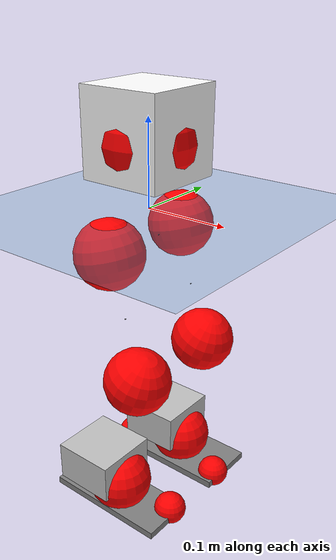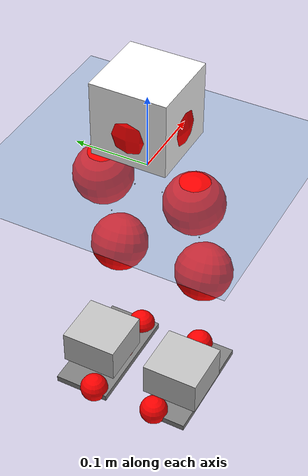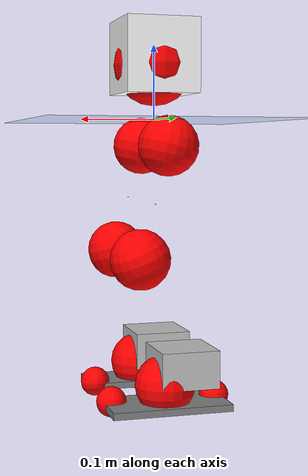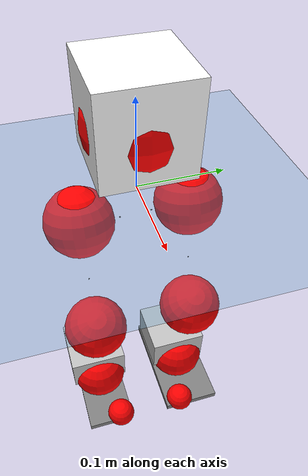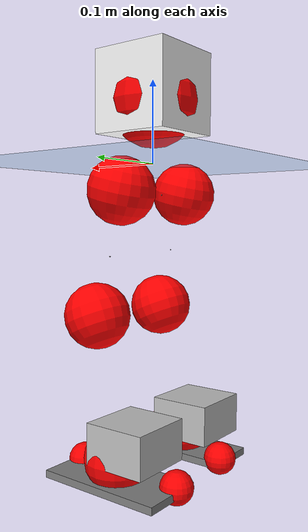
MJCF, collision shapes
<mujoco model="pi_12dof_release_v1">
  <compiler angle="radian" assetdir="assets" balanceinertia="true" inertiafromgeom="false"/>

  <option timestep="0.005" density="1.2" viscosity="2e-05"/>

  <size nkey="1"/>

  <visual>
    <quality shadowsize="8192"/>
    <map shadowclip="0.5"/>
  </visual>

  <default>
    <default class="/">
      <joint armature="0.01" damping="0.01" frictionloss="0.01"/>
      <geom contype="0" conaffinity="0" group="1" solref="-1000 -80"/>
      <site size="0.01 0.005 0.005" group="5"/>
      <general forcelimited="true" biastype="affine" gainprm="20" biasprm="0 -20 -0.5"/>
      <default class="foot">
        <geom size="0.0845 0.036 0.005" type="box" condim="6" group="4" priority="1" friction="0.9 0.2 0.2" solimp="0.015 1 0.005"/>
      </default>
      <default class="reward_collision_sphere">
        <geom group="5" rgba="1 0 0 1"/>
      </default>
    </default>
  </default>

  <asset>
    <texture type="skybox" colorspace="auto" name="//unnamed_texture_0" builtin="gradient" rgb1="0.95 0.95 0.95" rgb2="0.95 0.95 0.95" width="100" height="600"/>
    <texture type="2d" colorspace="auto" name="texplane" builtin="checker" rgb1="0.345 0.575 0.748" rgb2="0.345 0.575 0.748" markrgb="1 1 1" width="512" height="512"/>
    <material name="MatPlane" class="/" texture="texplane" texuniform="true" texrepeat="2 2" specular="0.9"/>
    <mesh name="baselink_1" class="/" file="baselink_1.STL"/>
    <mesh name="r_hip_pitch_link" class="/" file="r_hip_pitch_link.STL"/>
    <mesh name="r_hip_roll_link" class="/" file="r_hip_roll_link.STL"/>
    <mesh name="r_thigh_link" class="/" file="r_thigh_link.STL"/>
    <mesh name="r_calf_link" class="/" file="r_calf_link.STL"/>
    <mesh name="r_ankle_pitch_link" class="/" file="r_ankle_pitch_link.STL"/>
    <mesh name="r_ankle_roll_link" class="/" file="r_ankle_roll_link.STL"/>
    <mesh name="l_hip_pitch_link" class="/" file="l_hip_pitch_link.STL"/>
    <mesh name="l_hip_roll_link" class="/" file="l_hip_roll_link.STL"/>
    <mesh name="l_thigh_link" class="/" file="l_thigh_link.STL"/>
    <mesh name="l_calf_link" class="/" file="l_calf_link.STL"/>
    <mesh name="l_ankle_pitch_link" class="/" file="l_ankle_pitch_link.STL"/>
    <mesh name="l_ankle_roll_link" class="/" file="l_ankle_roll_link.STL"/>
  </asset>

  <worldbody>
    <geom name="floor" class="/" size="100 100 0.125" type="plane" group="0" material="MatPlane"/>
    <light name="toplight_shadow" class="/" pos="0 0 5" dir="0.0990148 0.0990148 -0.990148" type="directional" ambient="0.04 0.04 0.04" diffuse="0.55 0.55 0.55" specular="0.12 0.12 0.12"/>
    <light name="toplight_fill" class="/" pos="0 0 5" dir="0.0990148 0.0990148 -0.990148" type="directional" castshadow="false" ambient="0.04 0.04 0.04" diffuse="0.3 0.3 0.3" specular="0.08 0.08 0.08"/>
    <body name="trunk" pos="-0.000349518 -0.000334465 -0.00267558" quat="0.999999 0.000647678 -0.000157305 -0.00113929">
      <inertial pos="0.000879844 0.00122493 0.0442799" quat="0.692861 0.00508113 -0.0022061 0.72105" mass="2.10957" diaginertia="0.0127242 0.00384297 0.00650666"/>
      <joint name="//unnamed_joint_0" type="free"/>
      <geom name="//unnamed_geom_1" class="/" type="mesh" density="0" rgba="1 1 1 1" mesh="baselink_1"/>
      <geom name="//unnamed_geom_2" class="/" size="0.0494562 0.0494562 0.0494562" pos="0 0 0.0867944" type="box" rgba="1 1 1 1"/>
      <geom name="//unnamed_geom_3" class="reward_collision_sphere" size="0.0544019" pos="0 0 0.0759451"/>
      <site name="imu" class="/" pos="-0.00467207 0.00459612 -0.01052" size="0.00989125"/>
      <camera name="track" class="/" pos="0 -1.67158 0" quat="0.707107 0.707107 0 0" mode="trackcom"/>
      <camera name="ego_camera" class="/" pos="0.078499 0 0.195287" quat="-0.5 -0.5 0.5 0.5"/>
      <body name="r_hip_pitch_link" pos="0.00183901 -0.0191916 -0.0339187" quat="0.9922 4.44565e-06 -0.124654 -1.96682e-05">
        <inertial pos="-0.00141125 -0.047608 -0.00252095" quat="-0.0275848 0.699829 -0.0344416 0.712947" mass="0.353529" diaginertia="0.000138089 4.00701e-05 0.000123571"/>
        <joint name="r_hip_pitch_joint" class="/" pos="0 0 0" axis="0.000252219 -0.999987 -0.00518376" stiffness="0.00258417" range="-1.77269 1.27116" armature="0.00988522" damping="0.0161266" frictionloss="0.00952782"/>
        <geom name="//unnamed_geom_4" class="/" type="mesh" density="0" rgba="0.75294 0.75294 0.75294 1" mesh="r_hip_pitch_link"/>
        <geom name="//unnamed_geom_5" class="/" size="0.000494562 0.000494562 0.000494562" type="box" rgba="0.75294 0.75294 0.75294 1"/>
        <body name="r_hip_roll_link" pos="-0.00155505 -0.0454945 0.00254348" quat="1 -0.000241235 -2.98173e-05 -0.00017579">
          <inertial pos="-0.00121656 0.00020023 -0.0646675" quat="0.708778 -0.077121 -0.0828234 0.696295" mass="0.359526" diaginertia="0.000401747 0.000109843 0.000181882"/>
          <joint name="r_hip_roll_joint" class="/" pos="0 0 0" axis="-0.999963 0.00819504 0.00265183" stiffness="0.000954158" range="-0.118016 0.503671" armature="0.00859718" damping="0.00813871" frictionloss="0.0104263"/>
          <geom name="//unnamed_geom_6" class="/" type="mesh" density="0" rgba="0.75294 0.75294 0.75294 1" mesh="r_hip_roll_link"/>
          <geom name="//unnamed_geom_7" class="/" size="0.000494562 0.000494562 0.000494562" type="box" rgba="0.75294 0.75294 0.75294 1"/>
          <geom name="//unnamed_geom_8" class="reward_collision_sphere" size="0.039565"/>
          <body name="r_thigh_link" pos="0.00152331 0.000699413 -0.0747364" quat="1 0.000251676 0.000122281 0.000385737">
            <inertial pos="-0.00225955 -0.00188306 -0.0521021" quat="0.736893 0.676003 0.00122241 0.00240641" mass="0.108056" diaginertia="0.00015081 3.83567e-05 8.68242e-05"/>
            <joint name="r_thigh_joint" class="/" pos="0 0 0" axis="7.91884e-05 0.00295381 -0.999996" range="-0.308542 0.639582" armature="0.00869711" damping="0.0131786" frictionloss="0.0102817"/>
            <geom name="//unnamed_geom_9" class="/" type="mesh" density="0" rgba="0.75294 0.75294 0.75294 1" mesh="r_thigh_link"/>
            <geom name="//unnamed_geom_10" class="/" size="0.000494562 0.000494562 0.000494562" type="box" rgba="0.75294 0.75294 0.75294 1"/>
            <body name="r_calf_link" pos="-0.00169106 -0.00102932 -0.0761512" quat="0.947553 -0.00116149 0.319596 -0.000618645">
              <inertial pos="-0.000248716 -0.000787248 -0.0763464" quat="0.999844 -0.00355643 -0.00797979 0.0153183" mass="0.823021" diaginertia="0.00442607 0.00143787 0.000263667"/>
              <joint name="r_calf_joint" class="/" pos="0 0 0" axis="-0.00182046 -0.999987 -0.00476558" stiffness="0.0024924" range="-1.64561 0.659443" armature="0.00994918" damping="0.0105808" frictionloss="0.00996972"/>
              <geom name="//unnamed_geom_11" class="/" type="mesh" density="0" rgba="0.75294 0.75294 0.75294 1" mesh="r_calf_link"/>
              <geom name="//unnamed_geom_12" class="/" size="0.000494562 0.000494562 0.000494562" type="box" rgba="0.75294 0.75294 0.75294 1"/>
              <geom name="//unnamed_geom_13" class="reward_collision_sphere" size="0.039565"/>
              <body name="r_ankle_pitch_link" pos="0.00130337 0.000582741 -0.151909" quat="0.980044 -2.92214e-05 -0.198778 -6.69598e-05">
                <inertial pos="0.00485085 0.00277301 0.000573813" quat="0.00161977 0.707102 0.00281469 0.707104" mass="0.174106" diaginertia="0.000388013 8.76788e-05 0.000179324"/>
                <joint name="r_ankle_pitch_joint" class="/" pos="0 0 0" axis="-0.00212344 -0.99999 0.00402057" range="-1.31114 0.500624" armature="0.0101298" damping="0.0233121" frictionloss="0.00954702"/>
                <geom name="//unnamed_geom_14" class="/" type="mesh" density="0" rgba="0.75294 0.75294 0.75294 1" mesh="r_ankle_pitch_link"/>
                <geom name="//unnamed_geom_15" class="/" size="0.0385759 0.039565 0.0247281" type="box" rgba="0.75294 0.75294 0.75294 1"/>
                <body name="r_ankle_roll_link" pos="0.0778001 0.00116486 0.000948619" quat="1 0.00022445 -0.000384132 -0.000388483">
                  <inertial pos="-0.0236413 -0.00245945 -0.0137395" quat="0.552429 0.441452 0.434639 0.557703" mass="0.489815" diaginertia="0.00136704 0.000419568 0.000405403"/>
                  <joint name="r_ankle_roll_joint" class="/" pos="0 0 0" axis="-0.999994 -0.00152196 0.00324346" range="-0.202719 0.171261" armature="0.00865128" damping="0.0041635" frictionloss="0.00858081"/>
                  <geom name="//unnamed_geom_16" class="/" type="mesh" density="0" rgba="0.75294 0.75294 0.75294 1" mesh="r_ankle_roll_link"/>
                  <geom name="//unnamed_geom_17" class="/" type="mesh" rgba="0.75294 0.75294 0.75294 1" mesh="r_ankle_roll_link"/>
                  <geom name="right_foot" class="foot" size="0.0791778 0.0327346 0.00436707" pos="-0.0533793 0 -0.0477369"/>
                  <geom name="//unnamed_geom_19" class="reward_collision_sphere" size="0.039565" pos="-0.0523327 0 -0.0216986"/>
                  <geom name="//unnamed_geom_20" class="reward_collision_sphere" size="0.0197825" pos="0.0156998 0.0167158 -0.0433972"/>
                  <geom name="//unnamed_geom_21" class="reward_collision_sphere" size="0.0197825" pos="-0.125598 0.0167158 -0.0433972"/>
                  <site name="right_foot" class="foot" pos="-0.0533793 0 -0.0477369" size="0.00989125"/>
                </body>
              </body>
            </body>
          </body>
        </body>
      </body>
      <body name="l_hip_pitch_link" pos="0.000311176 0.0179877 -0.0338662" quat="0.992175 0.000271399 -0.124851 -0.000215414">
        <inertial pos="0.00126102 0.0423055 -0.00260324" quat="-0.0388654 0.704115 0.0302225 0.708377" mass="0.373481" diaginertia="0.000158996 4.21872e-05 0.000145875"/>
        <joint name="l_hip_pitch_joint" class="/" pos="0 0 0" axis="-0.00528073 0.999911 0.0122911" range="-1.30032 1.74443" armature="0.00994536" damping="0" frictionloss="0.0101562"/>
        <geom name="//unnamed_geom_22" class="/" type="mesh" density="0" rgba="0.75294 0.75294 0.75294 1" mesh="l_hip_pitch_link"/>
        <geom name="//unnamed_geom_23" class="/" size="0.000494562 0.000494562 0.000494562" type="box" rgba="0.75294 0.75294 0.75294 1"/>
        <body name="l_hip_roll_link" pos="-0.00113407 0.0441974 0.00220996" quat="1 -9.88809e-05 -1.13335e-05 0.000902396">
          <inertial pos="0.00101579 -0.00200362 -0.0689384" quat="0.699231 -0.0752832 -0.0780026 0.706629" mass="0.38544" diaginertia="0.000446293 0.000116046 0.000203379"/>
          <joint name="l_hip_roll_joint" class="/" pos="0 0 0" axis="-0.99999 9.93958e-06 -0.00440641" range="-0.502723 0.0972415" armature="0.00905712" damping="0.0117041" frictionloss="0.00988519"/>
          <geom name="//unnamed_geom_24" class="/" type="mesh" density="0" rgba="0.75294 0.75294 0.75294 1" mesh="l_hip_roll_link"/>
          <geom name="//unnamed_geom_25" class="/" size="0.000494562 0.000494562 0.000494562" type="box" rgba="0.75294 0.75294 0.75294 1"/>
          <geom name="//unnamed_geom_26" class="reward_collision_sphere" size="0.039565"/>
          <body name="l_thigh_link" pos="-0.00170232 -2.36593e-05 -0.0772048" quat="0.999999 -0.00100992 -0.000193095 0.000131475">
            <inertial pos="-0.002167 -0.00041527 -0.054383" quat="0.668699 0.743475 0.00235396 0.00899737" mass="0.107418" diaginertia="0.00015384 3.75632e-05 8.49557e-05"/>
            <joint name="l_thigh_joint" class="/" pos="0 0 0" axis="-0.00126031 0.00163332 -0.999998" range="-0.613109 0.31393" armature="0.0102837" damping="0.00775727" frictionloss="0.0112082"/>
            <geom name="//unnamed_geom_27" class="/" type="mesh" density="0" rgba="0.75294 0.75294 0.75294 1" mesh="l_thigh_link"/>
            <geom name="//unnamed_geom_28" class="/" size="0.000494562 0.000494562 0.000494562" type="box" rgba="0.75294 0.75294 0.75294 1"/>
            <body name="l_calf_link" pos="0.00180998 4.42846e-05 -0.0741626" quat="0.947742 -6.3581e-06 0.319037 0.000171141">
              <inertial pos="-0.00173824 0.00132466 -0.0771795" quat="0.99987 0.00399104 -0.0120679 0.00993497" mass="0.787553" diaginertia="0.00472277 0.00148132 0.00027302"/>
              <joint name="l_calf_joint" class="/" pos="0 0 0" axis="0.0051393 0.999986 0.00136635" range="-0.699461 1.70516" armature="0.00941945" damping="0" frictionloss="0.010554"/>
              <geom name="//unnamed_geom_29" class="/" type="mesh" density="0" rgba="0.75294 0.75294 0.75294 1" mesh="l_calf_link"/>
              <geom name="//unnamed_geom_30" class="/" size="0.000494562 0.000494562 0.000494562" type="box" rgba="0.75294 0.75294 0.75294 1"/>
              <geom name="//unnamed_geom_31" class="reward_collision_sphere" size="0.039565"/>
              <body name="l_ankle_pitch_link" pos="0.00238101 6.77543e-05 -0.151939" quat="0.980025 0.000277155 -0.198874 1.4404e-05">
                <inertial pos="0.00529767 -0.00178463 -0.00271619" quat="0.0039378 0.706949 0.00590689 0.707229" mass="0.166489" diaginertia="0.000402786 9.1628e-05 0.000179724"/>
                <joint name="l_ankle_pitch_joint" class="/" pos="0 0 0" axis="-0.000892359 0.999999 0.000675201" stiffness="0.00746821" range="-0.536409 1.31043" armature="0.00994929" damping="0" frictionloss="0.00882734"/>
                <geom name="//unnamed_geom_32" class="/" type="mesh" density="0" rgba="0.75294 0.75294 0.75294 1" mesh="l_ankle_pitch_link"/>
                <geom name="//unnamed_geom_33" class="/" size="0.0385759 0.039565 0.0247281" type="box" rgba="0.75294 0.75294 0.75294 1"/>
                <body name="l_ankle_roll_link" pos="0.0764583 0.0025925 -0.00258741" quat="0.999999 -0.0002957 -0.000398756 -0.00120778">
                  <inertial pos="-0.0259432 -0.000602976 -0.0161847" quat="0.551972 0.44021 0.437582 0.556834" mass="0.514751" diaginertia="0.00145385 0.000429097 0.000417269"/>
                  <joint name="l_ankle_roll_joint" class="/" pos="0 0 0" axis="-1 -3.45015e-06 7.546e-05" stiffness="0.00390297" range="-0.162556 0.100375" armature="0.00993925" damping="0" frictionloss="0.00976094"/>
                  <geom name="//unnamed_geom_34" class="/" type="mesh" density="0" rgba="0.75294 0.75294 0.75294 1" mesh="l_ankle_roll_link"/>
                  <geom name="//unnamed_geom_35" class="/" type="mesh" rgba="0.75294 0.75294 0.75294 1" mesh="l_ankle_roll_link"/>
                  <geom name="left_foot" class="foot" size="0.0796652 0.0397529 0.00452576" pos="-0.0533793 0 -0.0477369"/>
                  <geom name="//unnamed_geom_37" class="reward_collision_sphere" size="0.039565" pos="-0.0523327 0 -0.0216986"/>
                  <geom name="//unnamed_geom_38" class="reward_collision_sphere" size="0.0197825" pos="0.0156998 -0.0167158 -0.0433972"/>
                  <geom name="//unnamed_geom_39" class="reward_collision_sphere" size="0.0197825" pos="-0.125598 -0.0167158 -0.0433972"/>
                  <site name="left_foot" class="foot" pos="-0.0533793 0 -0.0477369" size="0.00989125"/>
                </body>
              </body>
            </body>
          </body>
        </body>
      </body>
    </body>
  </worldbody>

  <contact>
    <pair class="/" geom1="floor" geom2="right_foot" name="//unnamed_contact_1"/>
    <pair class="/" geom1="floor" geom2="left_foot" name="//unnamed_contact_0"/>
  </contact>

  <actuator>
    <general name="r_hip_pitch_joint" class="/" joint="r_hip_pitch_joint" forcerange="-22.7292 22.7292" gainprm="18.5605" biasprm="0 -18.5605 -0.465337"/>
    <general name="r_hip_roll_joint" class="/" joint="r_hip_roll_joint" forcerange="-18.7286 18.7286" gainprm="18.5605" biasprm="0 -18.5605 -0.465337"/>
    <general name="r_thigh_joint" class="/" joint="r_thigh_joint" forcerange="-21.0649 21.0649" gainprm="18.5605" biasprm="0 -18.5605 -0.465337"/>
    <general name="r_calf_joint" class="/" joint="r_calf_joint" forcerange="-22.7761 22.7761" gainprm="18.5605" biasprm="0 -18.5605 -0.465337"/>
    <general name="r_ankle_pitch_joint" class="/" joint="r_ankle_pitch_joint" forcerange="-20.8195 20.8195" gainprm="18.5605" biasprm="0 -18.5605 -0.465337"/>
    <general name="r_ankle_roll_joint" class="/" joint="r_ankle_roll_joint" forcerange="-18.685 18.685" gainprm="18.5605" biasprm="0 -18.5605 -0.465337"/>
    <general name="l_hip_pitch_joint" class="/" joint="l_hip_pitch_joint" forcerange="-20.8891 20.8891" gainprm="18.5605" biasprm="0 -18.5605 -0.465337"/>
    <general name="l_hip_roll_joint" class="/" joint="l_hip_roll_joint" forcerange="-20.1094 20.1094" gainprm="18.5605" biasprm="0 -18.5605 -0.465337"/>
    <general name="l_thigh_joint" class="/" joint="l_thigh_joint" forcerange="-21.3902 21.3902" gainprm="18.5605" biasprm="0 -18.5605 -0.465337"/>
    <general name="l_calf_joint" class="/" joint="l_calf_joint" forcerange="-21.3161 21.3161" gainprm="18.5605" biasprm="0 -18.5605 -0.465337"/>
    <general name="l_ankle_pitch_joint" class="/" joint="l_ankle_pitch_joint" forcerange="-21.2224 21.2224" gainprm="18.5605" biasprm="0 -18.5605 -0.465337"/>
    <general name="l_ankle_roll_joint" class="/" joint="l_ankle_roll_joint" forcerange="-20.8646 20.8646" gainprm="18.5605" biasprm="0 -18.5605 -0.465337"/>
  </actuator>

  <sensor>
    <gyro site="imu" name="imu_angular_velocity"/>
    <velocimeter site="imu" name="imu_linear_velocity"/>
    <framelinvel objtype="site" objname="left_foot" name="left_foot_global_linear_velocity"/>
    <framelinvel objtype="site" objname="right_foot" name="right_foot_global_linear_velocity"/>
  </sensor>

  <keyframe>
    <key name="home" qpos="0 0 0.291 1 0 0 0 0.4 0 0 -0.8 0.4 0 -0.4 0 0 0.8 -0.4 0"/>
  </keyframe>
</mujoco>
